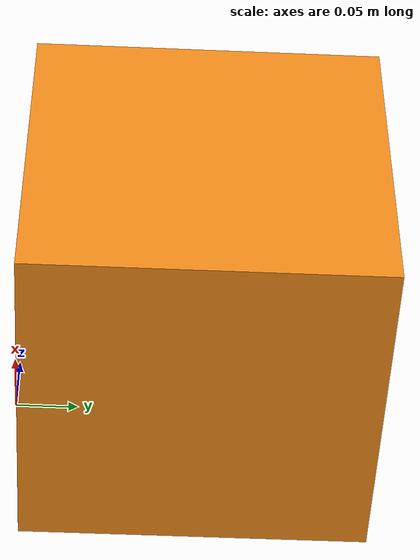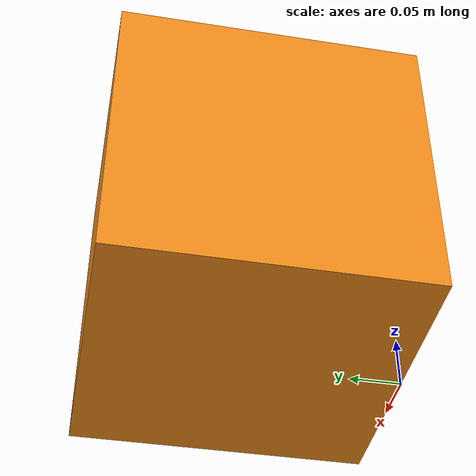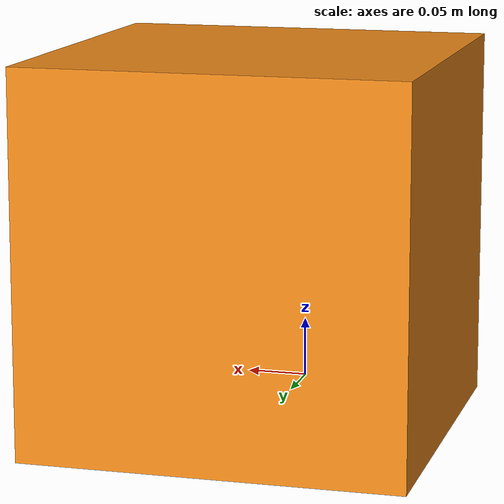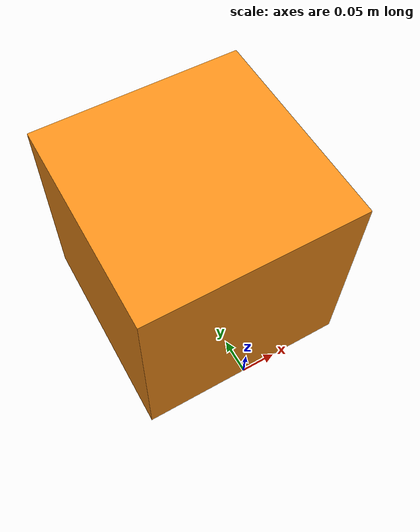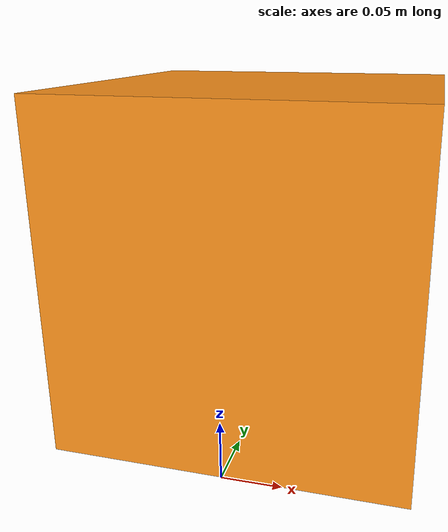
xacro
<?xml version="1.0"?>
<robot name="firstbot" xmlns:xacro="http://www.ros.org/wiki/xacro">
  <xacro:property name="PI" value="3.1415926535897931"/>

  <xacro:property name="boxDims" value="0.3" />
  <xacro:include filename="$(find firstbot_description)/urdf/firstbot.gazebo" />
  <xacro:include filename="$(find firstbot_description)/urdf/materials.xacro" />
  <xacro:include filename="$(find firstbot_description)/urdf/macros.xacro" />

  <link name="footprint" />

  <joint name="base_joint" type="fixed">
    <parent link="footprint"/>
    <child link="base_box"/>
  </joint>

  <link name='base_box'>
    <collision>
      <origin xyz="0 ${boxDims/2.0} ${boxDims/2.0}" rpy="0 0 0"/>
      <geometry>
        <box size="${boxDims} ${boxDims} ${boxDims}"/>
      </geometry>
    </collision>
    <visual>
      <origin xyz="0 ${boxDims/2.0} ${boxDims/2.0}" rpy="0 0 0"/>
      <geometry>
        <box size="${boxDims} ${boxDims} ${boxDims}"/>
      </geometry>
      <material name="orange"/>
    </visual>
    <inertial>
      <origin xyz="0 ${boxDims/2.0} ${boxDims/2.0}" rpy="0 0 0"/>
      <mass value="1.0"/>
      <box_inertia m="1.0" x="${boxDims}" y="${boxDims}" z="${boxDims}"/>
    </inertial>
  </link>
</robot>

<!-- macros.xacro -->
<robot name="firstbot" xmlns:xacro="http://www.ros.org/wiki/xacro">
	<macro name="cylinder_inertia" params="m r h">
	  <inertia  ixx="${m*(3*r*r+h*h)/12}" ixy = "0" ixz = "0"
	    iyy="${m*(3*r*r+h*h)/12}" iyz = "0"
	    izz="${m*r*r/2}"
	  />
	</macro>

	<macro name="box_inertia" params="m x y z">
	  <inertia  ixx="${m*(y*y+z*z)/12}" ixy = "0" ixz = "0"
	    iyy="${m*(x*x+z*z)/12}" iyz = "0"
	    izz="${m*(x*x+z*z)/12}"
	  />
	</macro>

	<macro name="sphere_inertia" params="m r">
	  <inertia  ixx="${2*m*r*r/5}" ixy = "0" ixz = "0"
	    iyy="${2*m*r*r/5}" iyz = "0"
	    izz="${2*m*r*r/5}"
	  />
	</macro>
</robot>
